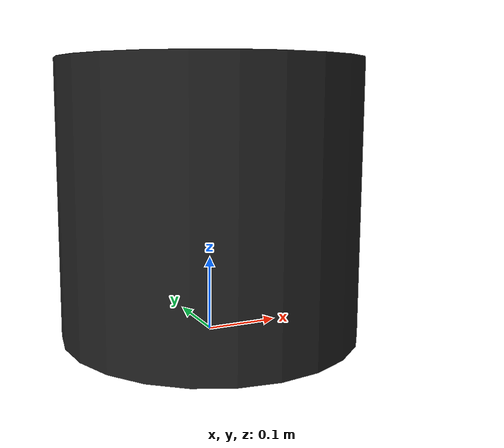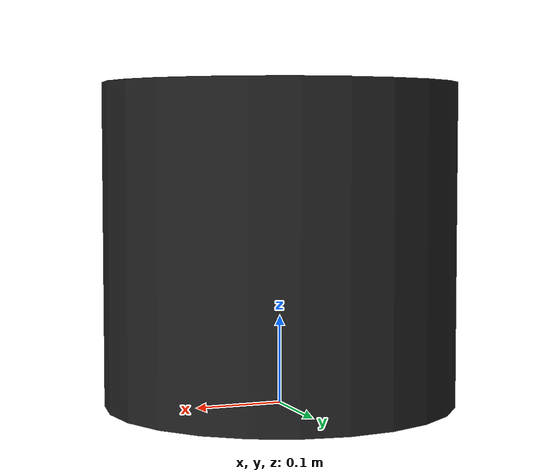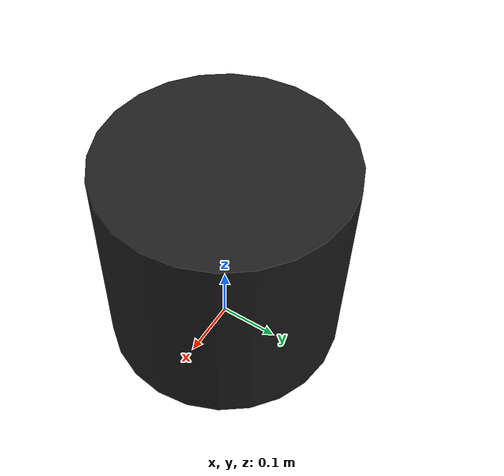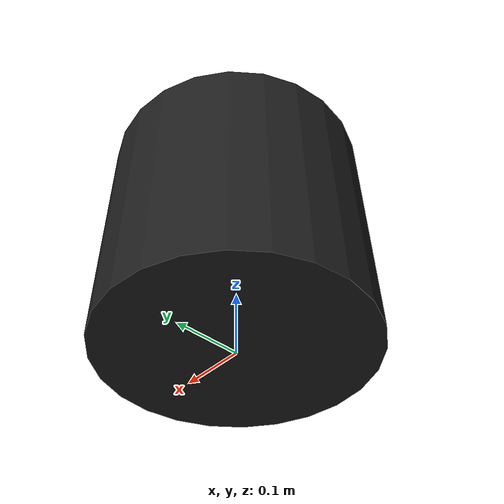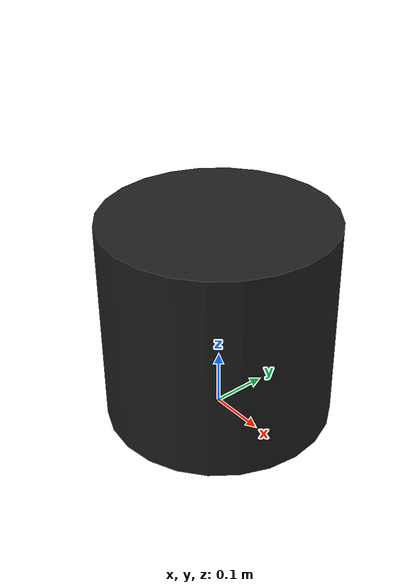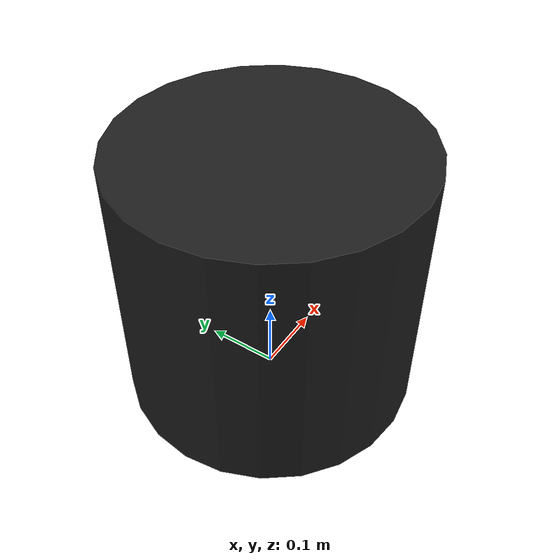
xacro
<?xml version="1.0"?>
<robot name="mrm" xmlns:xacro="http://www.ros.org/wiki/xacro">

   <link name="world"/>

   <link name="stand">
      <inertial>
         <origin xyz="0 0 0"/>
         <mass value="1.0"/>
         <inertia ixx="1.0" ixy="0.0" ixz="0.0" iyy="100.0" iyz="0.0" izz="1.0"/>
      </inertial>

      <visual>
         <origin xyz="0 0 0"/>
         <geometry>
            <cylinder length="0.365" radius="0.2"/>
         </geometry>
      </visual>

      <collision>
         <origin xyz="0 0 0"/>
         <geometry>
            <cylinder length="0.365" radius="0.2"/>
         </geometry>
      </collision>
   </link>

    <joint name="fix" type="fixed">
        <parent link="world"/>
        <child link="stand"/>
        <origin xyz="0 0 0.1825" rpy="0 0 0"/>
    </joint>

   <gazebo reference="stand">
      <material>Gazebo/FlatBlack</material>
   </gazebo>

</robot>
